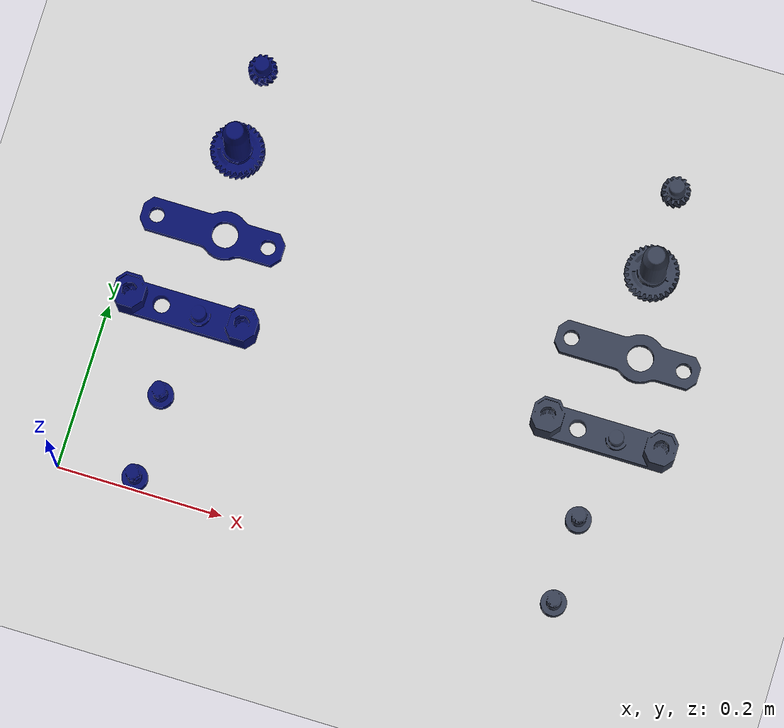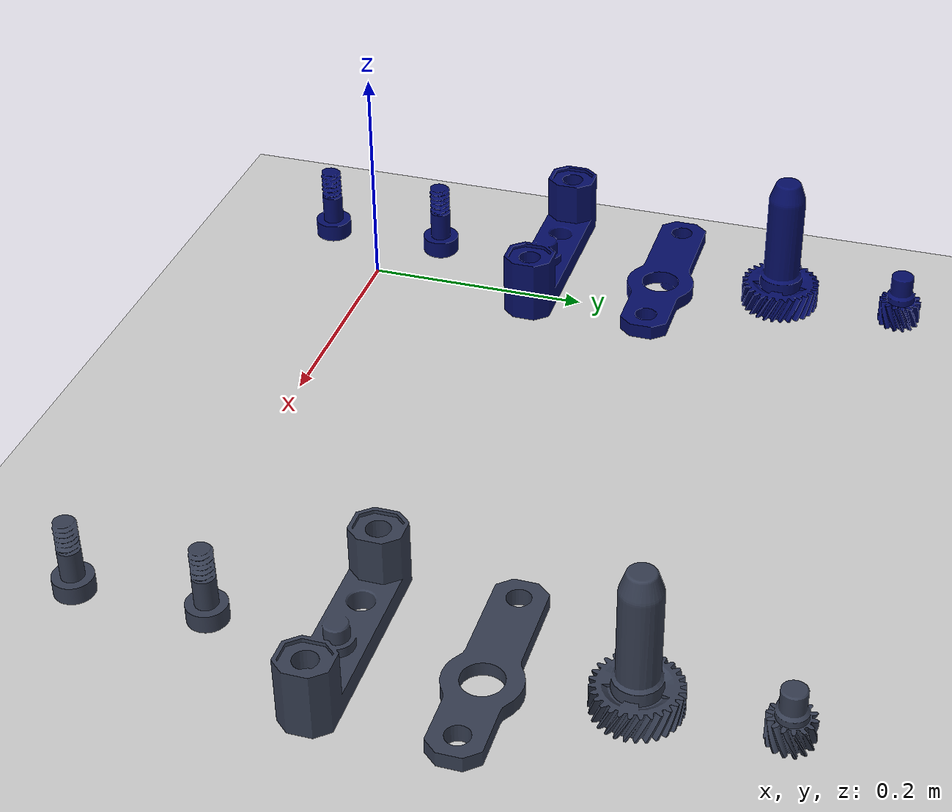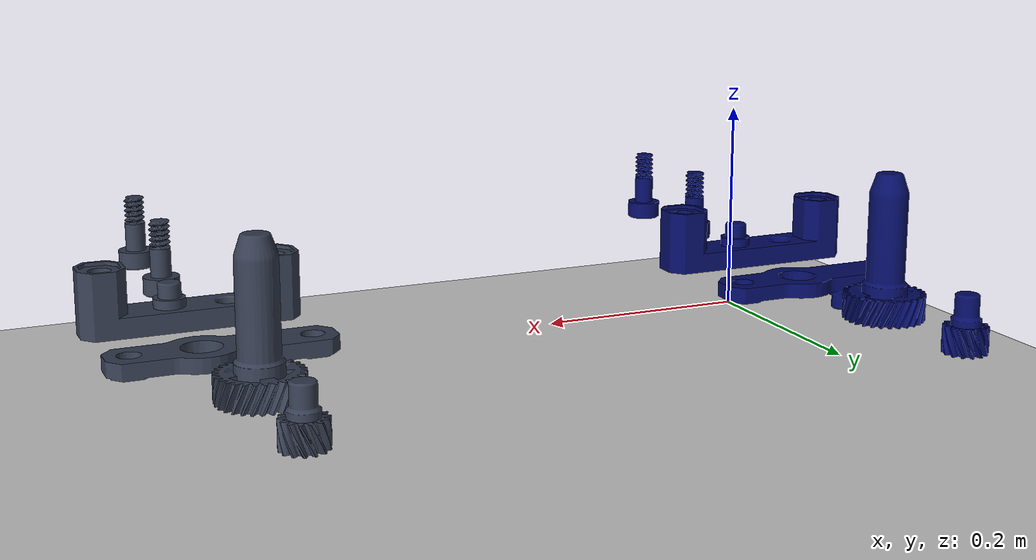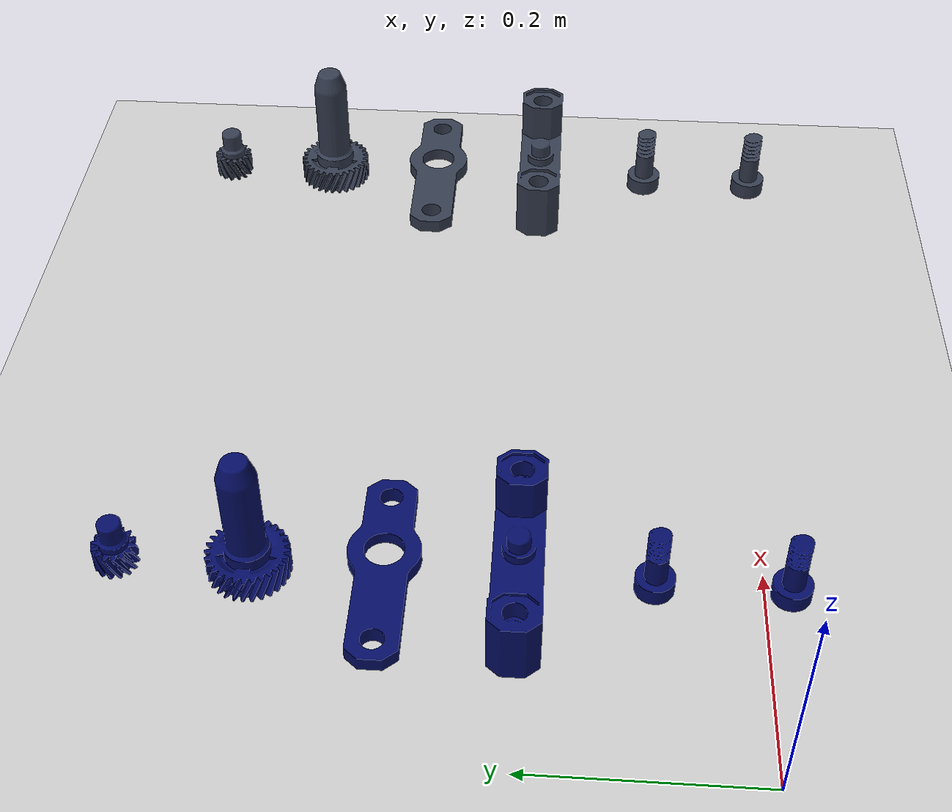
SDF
<?xml version="1.0" ?>
<sdf version="1.4">
  <world name="default">

    <include>
      <uri>model://ground_plane</uri>
    </include>

    <!-- GearBox Assembly Parts -->
    <!-- Blue -->
    <include>
      <uri>model://gearbox_bolt_blue</uri>
      <name>gearbox_bolt_blue1</name>
      <pose>0.1 0.0 0.1 0 0 0</pose>
    </include>

    <include>
      <uri>model://gearbox_bolt_blue</uri>
      <name>gearbox_bolt_blue2</name>
      <pose>0.1 0.1 0.1 0 0 0</pose>
    </include>

    <include>
      <uri>model://gearbox_bottom_blue</uri>
      <name>gearbox_bottom_blue</name>
      <pose>0.1 0.2 0.1 0 0 0</pose>
    </include>

    <include>
      <uri>model://gearbox_top_blue</uri>
      <name>gearbox_top_blue1</name>
      <pose>0.1 0.3 0.1 0 0 0</pose>
    </include>

    <include>
      <uri>model://gearbox_largegear_blue</uri>
      <name>gearbox_largegear_blue1</name>
      <pose>0.1 0.4 0.1 0 0 0</pose>
    </include>

        <include>
      <uri>model://gearbox_smallgear_blue</uri>
      <name>gearbox_smallgear_blue1</name>
      <pose>0.1 0.5 0.1 0 0 0</pose>
    </include>

    <!-- Grey -->
    <include>
      <uri>model://gearbox_bolt_grey</uri>
      <name>gearbox_bolt_grey1</name>
      <pose>0.6 0.0 0.1 0 0 0</pose>
    </include>

    <include>
      <uri>model://gearbox_bolt_grey</uri>
      <name>gearbox_bolt_grey2</name>
      <pose>0.6 0.1 0.1 0 0 0</pose>
    </include>

    <include>
      <uri>model://gearbox_bottom_grey</uri>
      <name>gearbox_bottom_grey</name>
      <pose>0.6 0.2 0.1 0 0 0</pose>
    </include>

    <include>
      <uri>model://gearbox_top_grey</uri>
      <name>gearbox_top_grey1</name>
      <pose>0.6 0.3 0.1 0 0 0</pose>
    </include>

    <include>
      <uri>model://gearbox_largegear_grey</uri>
      <name>gearbox_largegear_grey1</name>
      <pose>0.6 0.4 0.1 0 0 0</pose>
    </include>

        <include>
      <uri>model://gearbox_smallgear_grey</uri>
      <name>gearbox_smallgear_grey1</name>
      <pose>0.6 0.5 0.1 0 0 0</pose>
    </include>

    <!-- Lights -->

    <light name='user_point_light_0' type='point'>
      <pose frame=''>1.0 1.0 3.5 0 0 0</pose>
      <diffuse>0.7 0.7 0.7 1</diffuse>
      <specular>0.1 0.1 0.1 1</specular>
      <attenuation>
        <range>10</range>
        <constant>0.5</constant>
        <linear>0.01</linear>
        <quadratic>0.001</quadratic>
      </attenuation>
      <cast_shadows>0</cast_shadows>
      <direction>0 0 -1</direction>
    </light>

    <light name='user_point_light_1' type='point'>
      <pose frame=''>-1.0 1.0 3.5 0 0 0</pose>
      <diffuse>0.7 0.7 0.7 1</diffuse>
      <specular>0.1 0.1 0.1 1</specular>
      <attenuation>
        <range>10</range>
        <constant>0.5</constant>
        <linear>0.01</linear>
        <quadratic>0.001</quadratic>
      </attenuation>
      <cast_shadows>0</cast_shadows>
      <direction>0 0 -1</direction>
    </light>

    <light name='user_point_light_2' type='point'>
      <pose frame=''>-1.0 -1.0 3.5 0 0 0</pose>
      <diffuse>0.7 0.7 0.7 1</diffuse>
      <specular>0.1 0.1 0.1 1</specular>
      <attenuation>
        <range>10</range>
        <constant>0.5</constant>
        <linear>0.01</linear>
        <quadratic>0.001</quadratic>
      </attenuation>
      <cast_shadows>0</cast_shadows>
      <direction>0 0 -1</direction>
    </light>

    <light name='user_point_light_3' type='point'>
      <pose frame=''>1.0 -1.0 3.5 0 0 0</pose>
      <diffuse>0.7 0.7 0.7 1</diffuse>
      <specular>0.1 0.1 0.1 1</specular>
      <attenuation>
        <range>10</range>
        <constant>0.5</constant>
        <linear>0.01</linear>
        <quadratic>0.001</quadratic>
      </attenuation>
      <cast_shadows>0</cast_shadows>
      <direction>0 0 -1</direction>
    </light>

  </world>
</sdf>

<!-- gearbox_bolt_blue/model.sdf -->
<sdf version='1.4'>
  <model name="gearbox_bolt_blue">
      <static>0</static>
      <link name='link'>
        <inertial>
          <pose>0 0 0.030633 0 0 0</pose>
          <mass>0.0592855</mass>
          <inertia>
            <ixx>2.2977502034e-05</ixx>
            <ixy>0.000000</ixy>
            <ixz>0.000000</ixz>
            <iyy>2.29905352792e-05</iyy>
            <iyz>0.000000</iyz>
            <izz>8.87979175473e-06</izz>
          </inertia>
        </inertial>
        <collision name='collision'>
          <geometry>
            <mesh>
              <uri>model://gearbox_bolt_blue/meshes/gear_bolt_simple.stl</uri>
              <scale>1 1 1</scale>
            </mesh>
          </geometry>
          <surface>
            <friction>
              <ode>
                <mu>30.0</mu>
                <mu2>30.0</mu2>
              </ode>
            </friction>
          </surface>
        </collision>
        <visual name='visual'>
          <geometry>
            <mesh>
              <uri>model://gearbox_bolt_blue/meshes/screw_blue.dae</uri>
              <scale>1 1 1</scale>
            </mesh>
          </geometry>
        </visual>
        <velocity_decay>
          <linear>0.000000</linear>
          <angular>0.000000</angular>
        </velocity_decay>
        <self_collide>0</self_collide>
        <kinematic>0</kinematic>
        <gravity>1</gravity>
      </link>
  </model>
</sdf>

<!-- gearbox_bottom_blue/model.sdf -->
<sdf version='1.4'>
  <model name="gearbox_bottom_blue">
      <static>0</static>
      <link name='link'>
        <inertial>
          <pose>0 0 0.0261852 0 0 0</pose>
          <mass>0.3705614</mass>
          <inertia>
            <ixx>0.000131217258397</ixx>
            <ixy>0.000000</ixy>
            <ixz>0.000000</ixz>
            <iyy>0.000981017941434</iyy>
            <iyz>0.000000</iyz>
            <izz>0.000942847952626</izz>
          </inertia>
        </inertial>
        <collision name='collision'>
          <geometry>
            <mesh>
              <uri>model://gearbox_bottom_blue/meshes/gearbox_bottom_simple.stl</uri>
              <scale>1 1 1</scale>
            </mesh>
          </geometry>
          <surface>
            <friction>
              <ode>
                <mu>30.0</mu>
                <mu2>30.0</mu2>
              </ode>
            </friction>
          </surface>
        </collision>
        <visual name='visual'>
          <geometry>
            <mesh>
              <uri>model://gearbox_bottom_blue/meshes/gearBoxBottom_blue.dae</uri>
              <scale>1 1 1</scale>
            </mesh>
          </geometry>
        </visual>
        <velocity_decay>
          <linear>0.000000</linear>
          <angular>0.000000</angular>
        </velocity_decay>
        <self_collide>0</self_collide>
        <kinematic>0</kinematic>
        <gravity>1</gravity>
      </link>
  </model>
</sdf>

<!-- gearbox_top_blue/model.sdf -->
<sdf version='1.4'>
  <model name="gearbox_top_blue">
      <static>0</static>
      <link name='link'>
        <inertial>
          <pose>0 0 0 0 0 0</pose>
          <mass>0.2282587</mass>
          <inertia>
            <ixx>4.84526132205e-05</ixx>
            <ixy>0.000000</ixy>
            <ixz>0.000000</ixz>
            <iyy>0.000571913204992</iyy>
            <iyz>0.000000</iyz>
            <izz>0.000580776512074</izz>
          </inertia>
        </inertial>
        <collision name='collision'>
          <geometry>
            <mesh>
              <uri>model://gearbox_top_blue/meshes/gearBoxTop_v3.stl</uri>
              <scale>1 1 1</scale>
            </mesh>
          </geometry>
          <surface>
            <friction>
              <ode>
                <mu>30.0</mu>
                <mu2>30.0</mu2>
              </ode>
            </friction>
          </surface>
        </collision>
        <visual name='visual'>
          <geometry>
            <mesh>
              <uri>model://gearbox_top_blue/meshes/gearBoxTop_blue.dae</uri>
              <scale>1 1 1</scale>
            </mesh>
          </geometry>
        </visual>
        <velocity_decay>
          <linear>0.000000</linear>
          <angular>0.000000</angular>
        </velocity_decay>
        <self_collide>0</self_collide>
        <kinematic>0</kinematic>
        <gravity>1</gravity>
      </link>
  </model>
</sdf>

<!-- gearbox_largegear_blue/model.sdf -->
<sdf version='1.4'>
  <model name="gearbox_largegear_blue">
      <static>0</static>
      <link name='link'>
        <inertial>
          <pose>0 0 0.057592 0 0 0</pose>
          <mass>0.2380243</mass>
          <inertia>
            <ixx>0.000343121171301</ixx>
            <ixy>0.000000</ixy>
            <ixz>0.000000</ixz>
            <iyy>0.000343121171301</iyy>
            <iyz>0.000000</iyz>
            <izz>0.000159916906863</izz>
          </inertia>
        </inertial>
        <collision name='collision'>
          <geometry>
            <mesh>
              <uri>model://gearbox_largegear_blue/meshes/largeGear_v5.stl</uri>
              <scale>1 1 1</scale>
            </mesh>
          </geometry>
          <surface>
            <friction>
              <ode>
                <mu>30.0</mu>
                <mu2>30.0</mu2>
              </ode>
            </friction>
            <contact>
              <ode>
                <soft_cfm>0</soft_cfm>
    	          <soft_erp>0.2</soft_erp>
    	          <kp>1e+13</kp>
    	          <kd>1</kd>
    	          <max_vel>0.01</max_vel>
    	          <min_depth>0</min_depth>
              </ode>
            </contact>
          </surface>
        </collision>
        <visual name='visual'>
          <geometry>
            <mesh>
              <uri>model://gearbox_largegear_blue/meshes/largeGear_blue.dae</uri>
              <scale>1 1 1</scale>
            </mesh>
          </geometry>
        </visual>
        <velocity_decay>
          <linear>0.000000</linear>
          <angular>0.000000</angular>
        </velocity_decay>
        <self_collide>0</self_collide>
        <kinematic>0</kinematic>
        <gravity>1</gravity>
      </link>
  </model>
</sdf>

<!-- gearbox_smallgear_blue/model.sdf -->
<sdf version='1.4'>
  <model name="gearbox_smallgear_blue">
      <static>0</static>
      <link name='link'>
        <inertial>
          <pose>0 0 0.022095 0 0 0</pose>
          <mass>0.0572118</mass>
          <inertia>
            <ixx>1.47768767647e-05</ixx>
            <ixy>0.000000</ixy>
            <ixz>0.000000</ixz>
            <iyy>1.47768767647e-05</iyy>
            <iyz>0.000000</iyz>
            <izz>1.09336382892e-05</izz>
          </inertia>
        </inertial>
        <collision name='collision'>
          <geometry>
            <mesh>
              <uri>model://gearbox_smallgear_blue/meshes/smallGear_simple_v2.stl</uri>
              <scale>1 1 1</scale>
            </mesh>
          </geometry>
          <surface>
            <friction>
              <ode>
                <mu>30.0</mu>
                <mu2>30.0</mu2>
              </ode>
            </friction>
          </surface>
        </collision>
        <visual name='visual'>
          <geometry>
            <mesh>
              <uri>model://gearbox_smallgear_blue/meshes/smallGear_blue.dae</uri>
              <scale>1 1 1</scale>
            </mesh>
          </geometry>
        </visual>
        <velocity_decay>
          <linear>0.000000</linear>
          <angular>0.000000</angular>
        </velocity_decay>
        <self_collide>0</self_collide>
        <kinematic>0</kinematic>
        <gravity>1</gravity>
      </link>
  </model>
</sdf>

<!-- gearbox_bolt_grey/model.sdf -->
<sdf version='1.4'>
  <model name="gearbox_bolt_grey">
      <static>0</static>
      <link name='link'>
        <inertial>
          <pose>0 0 0.030633 0 0 0</pose>
          <mass>0.0592855</mass>
          <inertia>
            <ixx>2.2977502034e-05</ixx>
            <ixy>0.000000</ixy>
            <ixz>0.000000</ixz>
            <iyy>2.29905352792e-05</iyy>
            <iyz>0.000000</iyz>
            <izz>8.87979175473e-06</izz>
          </inertia>
        </inertial>
        <collision name='collision'>
          <geometry>
            <mesh>
              <uri>model://gearbox_bolt_grey/meshes/gear_bolt_simple.stl</uri>
              <scale>1 1 1</scale>
            </mesh>
          </geometry>
          <surface>
            <friction>
              <ode>
                <mu>30.0</mu>
                <mu2>30.0</mu2>
              </ode>
            </friction>
          </surface>
        </collision>
        <visual name='visual'>
          <geometry>
            <mesh>
              <uri>model://gearbox_bolt_grey/meshes/screw_grey.dae</uri>
              <scale>1 1 1</scale>
            </mesh>
          </geometry>
        </visual>
        <velocity_decay>
          <linear>0.000000</linear>
          <angular>0.000000</angular>
        </velocity_decay>
        <self_collide>0</self_collide>
        <kinematic>0</kinematic>
        <gravity>1</gravity>
      </link>
  </model>
</sdf>

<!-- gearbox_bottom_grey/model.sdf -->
<sdf version='1.4'>
  <model name="gearbox_bottom_grey">
      <static>0</static>
      <link name='link'>
        <inertial>
          <pose>0 0 0.0261852 0 0 0</pose>
          <mass>0.3705614</mass>
          <inertia>
            <ixx>0.000131217258397</ixx>
            <ixy>0.000000</ixy>
            <ixz>0.000000</ixz>
            <iyy>0.000981017941434</iyy>
            <iyz>0.000000</iyz>
            <izz>0.000942847952626</izz>
          </inertia>
        </inertial>
        <collision name='collision'>
          <geometry>
            <mesh>
              <uri>model://gearbox_bottom_grey/meshes/gearbox_bottom_simple.stl</uri>
              <scale>1 1 1</scale>
            </mesh>
          </geometry>
          <surface>
            <friction>
              <ode>
                <mu>30.0</mu>
                <mu2>30.0</mu2>
              </ode>
            </friction>
          </surface>
        </collision>
        <visual name='visual'>
          <geometry>
            <mesh>
              <uri>model://gearbox_bottom_grey/meshes/gearBoxBottom_grey.dae</uri>
              <scale>1 1 1</scale>
            </mesh>
          </geometry>
        </visual>
        <velocity_decay>
          <linear>0.000000</linear>
          <angular>0.000000</angular>
        </velocity_decay>
        <self_collide>0</self_collide>
        <kinematic>0</kinematic>
        <gravity>1</gravity>
      </link>
  </model>
</sdf>

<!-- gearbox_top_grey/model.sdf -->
<sdf version='1.4'>
  <model name="gearbox_top_grey">
      <static>0</static>
      <link name='link'>
        <inertial>
          <pose>0 0 0 0 0 0</pose>
          <mass>0.2282587</mass>
          <inertia>
            <ixx>4.84526132205e-05</ixx>
            <ixy>0.000000</ixy>
            <ixz>0.000000</ixz>
            <iyy>0.000571913204992</iyy>
            <iyz>0.000000</iyz>
            <izz>0.000580776512074</izz>
          </inertia>
        </inertial>
        <collision name='collision'>
          <geometry>
            <mesh>
              <uri>model://gearbox_top_grey/meshes/gearBoxTop_v3.stl</uri>
              <scale>1 1 1</scale>
            </mesh>
          </geometry>
          <surface>
            <friction>
              <ode>
                <mu>30.0</mu>
                <mu2>30.0</mu2>
              </ode>
            </friction>
          </surface>
        </collision>
        <visual name='visual'>
          <geometry>
            <mesh>
              <uri>model://gearbox_top_grey/meshes/gearBoxTop_grey.dae</uri>
              <scale>1 1 1</scale>
            </mesh>
          </geometry>
        </visual>
        <velocity_decay>
          <linear>0.000000</linear>
          <angular>0.000000</angular>
        </velocity_decay>
        <self_collide>0</self_collide>
        <kinematic>0</kinematic>
        <gravity>1</gravity>
      </link>
  </model>
</sdf>

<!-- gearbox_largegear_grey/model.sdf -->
<sdf version='1.4'>
  <model name="gearbox_largegear_grey">
      <static>0</static>
      <link name='link'>
        <inertial>
          <pose>0 0 0.057592 0 0 0</pose>
          <mass>0.2380243</mass>
          <inertia>
            <ixx>0.000343121171301</ixx>
            <ixy>0.000000</ixy>
            <ixz>0.000000</ixz>
            <iyy>0.000343121171301</iyy>
            <iyz>0.000000</iyz>
            <izz>0.000159916906863</izz>
          </inertia>
        </inertial>
        <collision name='collision'>
          <geometry>
            <mesh>
              <uri>model://gearbox_largegear_grey/meshes/largeGear_v5.stl</uri>
              <scale>1 1 1</scale>
            </mesh>
          </geometry>
          <surface>
            <friction>
              <ode>
                <mu>30.0</mu>
                <mu2>30.0</mu2>
              </ode>
            </friction>
            <contact>
              <ode>
                <soft_cfm>0</soft_cfm>
    	          <soft_erp>0.2</soft_erp>
    	          <kp>1e+13</kp>
    	          <kd>1</kd>
    	          <max_vel>0.01</max_vel>
    	          <min_depth>0</min_depth>
              </ode>
            </contact>
          </surface>
        </collision>
        <visual name='visual'>
          <geometry>
            <mesh>
              <uri>model://gearbox_largegear_grey/meshes/largeGear_grey.dae</uri>
              <scale>1 1 1</scale>
            </mesh>
          </geometry>
        </visual>
        <velocity_decay>
          <linear>0.000000</linear>
          <angular>0.000000</angular>
        </velocity_decay>
        <self_collide>0</self_collide>
        <kinematic>0</kinematic>
        <gravity>1</gravity>
      </link>
  </model>
</sdf>

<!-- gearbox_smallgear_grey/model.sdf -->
<sdf version='1.4'>
  <model name="gearbox_smallgear_grey">
      <static>0</static>
      <link name='link'>
        <inertial>
          <pose>0 0 0.022095 0 0 0</pose>
          <mass>0.0572118</mass>
          <inertia>
            <ixx>1.47768767647e-05</ixx>
            <ixy>0.000000</ixy>
            <ixz>0.000000</ixz>
            <iyy>1.47768767647e-05</iyy>
            <iyz>0.000000</iyz>
            <izz>1.09336382892e-05</izz>
          </inertia>
        </inertial>
        <collision name='collision'>
          <geometry>
            <mesh>
              <uri>model://gearbox_smallgear_grey/meshes/smallGear_simple_v2.stl</uri>
              <scale>1 1 1</scale>
            </mesh>
          </geometry>
          <surface>
            <friction>
              <ode>
                <mu>30.0</mu>
                <mu2>30.0</mu2>
              </ode>
            </friction>
          </surface>
        </collision>
        <visual name='visual'>
          <geometry>
            <mesh>
              <uri>model://gearbox_smallgear_grey/meshes/smallGear_grey.dae</uri>
              <scale>1 1 1</scale>
            </mesh>
          </geometry>
        </visual>
        <velocity_decay>
          <linear>0.000000</linear>
          <angular>0.000000</angular>
        </velocity_decay>
        <self_collide>0</self_collide>
        <kinematic>0</kinematic>
        <gravity>1</gravity>
      </link>
  </model>
</sdf>
